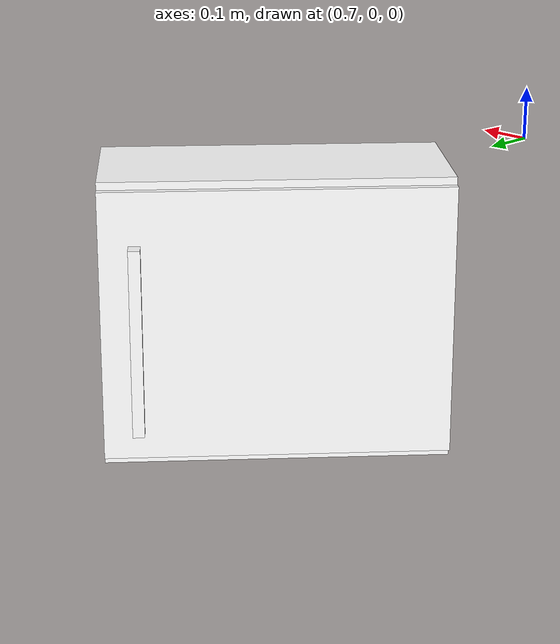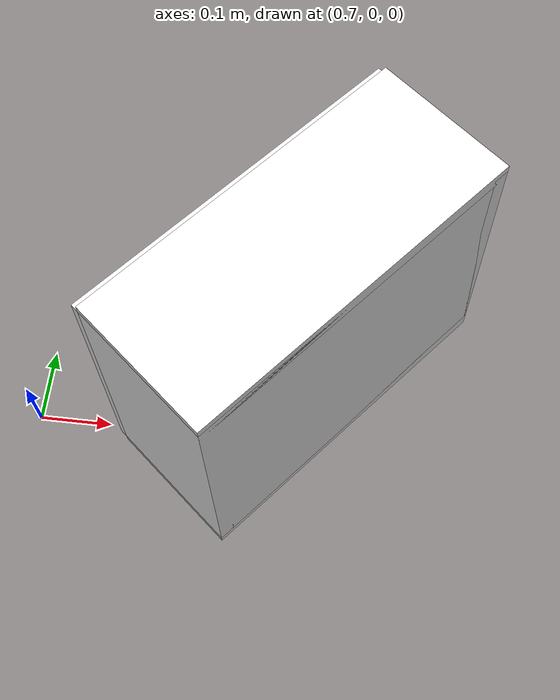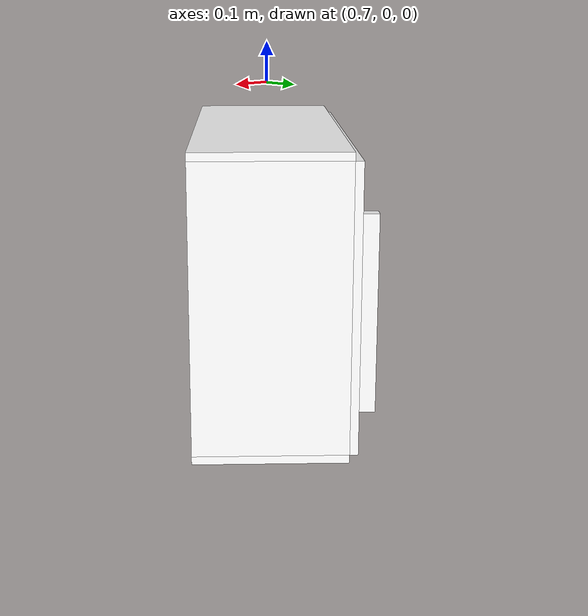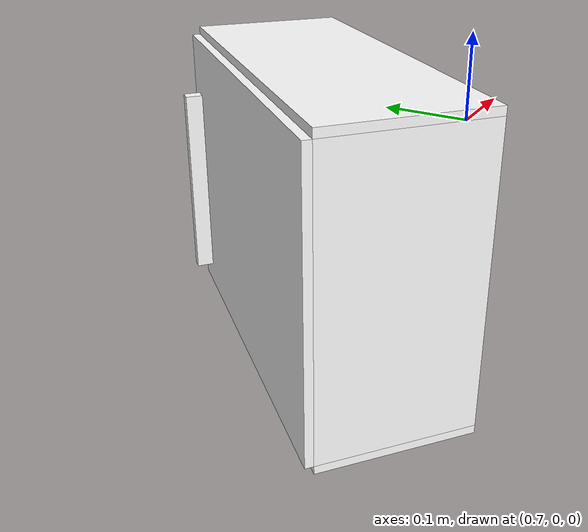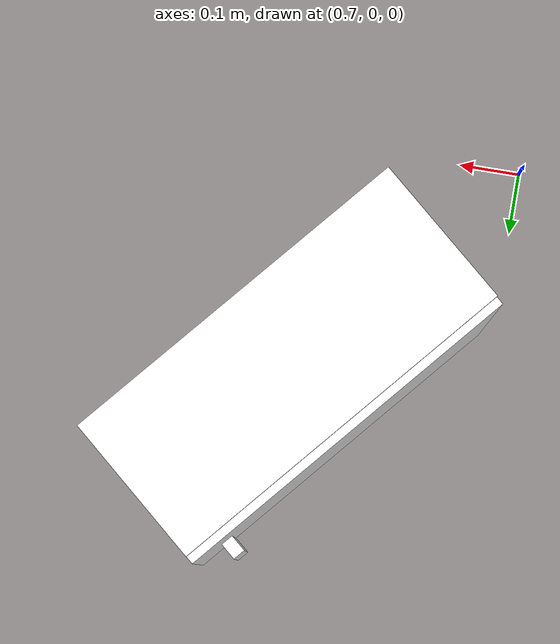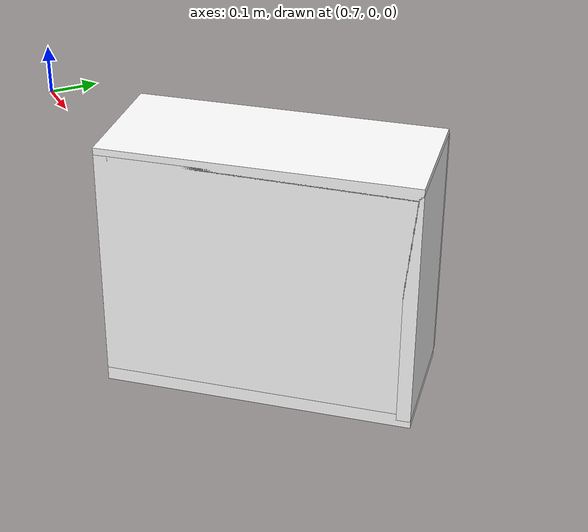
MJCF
<mujoco model="cabinet">
    <compiler angle="radian" eulerseq='zxy' />
    <option gravity = "0 0 0" />
    <option>
        <flag contact = "disable"/>
    </option>
    <statistic	extent="1.0" center="0.0 0.0 0.0"/>
    <visual>
        <map fogstart="3" fogend="5" force="0.1" znear=" 0.100000 " zfar=" 12.000000 "/>
    </visual>
    <size njmax="500" nconmax="100" />
    <actuator>
        <velocity joint="bottom_left_hinge" name="viva_revolution" kv='10'></velocity>
    </actuator>
    <asset>
        <texture builtin="flat" name="tabletex" height="32" width="32" rgb1="1 1 1" type="cube"></texture>
        <texture builtin="flat" name="objtex" height="32" width="32" rgb1="1 1 1" type="cube"></texture>
        <texture builtin="flat" name="handletex" height="32" width="32" rgb1="1 1 1" type="cube"></texture>
        <texture builtin="flat" name="wallpaper" height="32" width="32" rgb1="1 1 1" type="cube"></texture>
        <material name="geomTable" shininess="0.03" specular="0.75" texture="tabletex"></material>
        <material name="geomObj" shininess="0.03" specular="0.75" texture="objtex"></material>
        <material name="geomHandle" shininess="0.03" specular="0.75" texture="handletex"></material>
        <material name="bg" shininess="0.03" specular="0.75" texture="wallpaper"></material>
    </asset>
    <worldbody>
            <body name="cabinet_bottom" pos= " 1.028478 0.368619 -0.596699 "  quat= " 0.344630 0.000000 0.000000 0.938739" >
                <inertial pos="0 0 0" mass="1" diaginertia="1 1 1" />
                <geom size= " 0.143033 0.341554 0.015470 "  type="box" material="geomObj" name="b"/>
                <body name="cabinet_left" pos= " 0.000000 -0.326085 0.269854 " >
                    <inertial pos="0 0 0" mass="1" diaginertia="1 1 1" />
                    <geom size= " 0.143033 0.015470 0.269854 "  type="box" material="geomObj" name="c" />
                </body>
                <body name="cabinet_right" pos= " 0.000000 0.326085 0.269854 " >
                    <inertial pos="0 0 0" mass="1" diaginertia="1 1 1" />
                    <geom size= " 0.143033 0.015470 0.269854 "  type="box" material="geomObj" name="d" />
                </body>
                <body name="cabinet_top" pos= " 0.000000 0.000000 0.539707 " >
                    <inertial pos="0 0 0" mass="1" diaginertia="1 1 1" />
                    <geom size= " 0.143033 0.341554 0.015470 "  type="box" material="geomObj" name="e"/>
                </body>
                <body name="cabinet_back" pos= " -0.127563 0.000000 0.269854 "  >
                    <inertial pos="0 0 0" mass="1" diaginertia="1 1 1" />
                    <geom size= " 0.015470 0.341554 0.269854 "  type="box" material="geomObj" name="f" />
                </body>
                <body name="cabinet_left_hinge" pos= " 0.143033 0.341554 0.269854 " >
                    <inertial pos= " 0.000000 -0.341554 0.000000 "  mass="1" diaginertia="1 1 1" />
                    <joint name="bottom_left_hinge" type="hinge" pos="0 0 0" axis="0 0 1" limited="true" range= "0 2.3"  />
                    <geom size= " 0.015470 0.341554 0.269854 "  pos= " 0.000000 -0.341554 0.000000 "  type="box" material="geomObj" name="g"/>
                    <body name="handle_link" pos= " 0.035758 -0.614073 -0.023200 " >
                        <inertial pos="0 0 0" mass="1" diaginertia="1 1 1" />
                        <geom size= " 0.016251 0.011713 0.188647 "  type="box" material="geomHandle" name="h"/>
                    </body>
                </body>
            </body>
        <body name="external_camera_body_0" pos="0.0 0 0.00">
            <camera euler="-1.57 1.57 0.0" fovy=" 54.280851 " name="external_camera_0" pos="0.0 0 0"></camera>
            <inertial pos= " 0.00 0.0 0.000000 " mass="1" diaginertia="1 1 1" />
            <joint name="cam_j" pos="0.0 0 0" axis = "1 0 0" type="free" />
        </body>
    </worldbody>
</mujoco>
